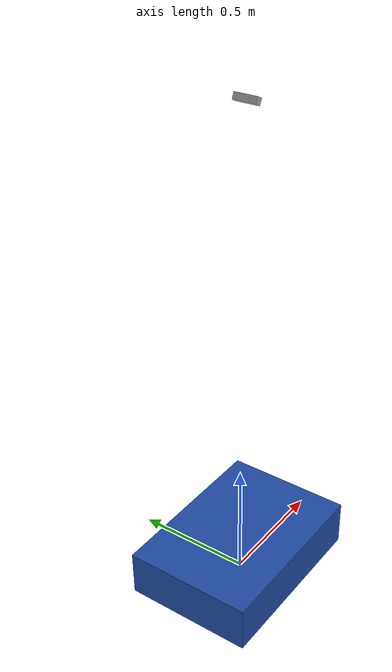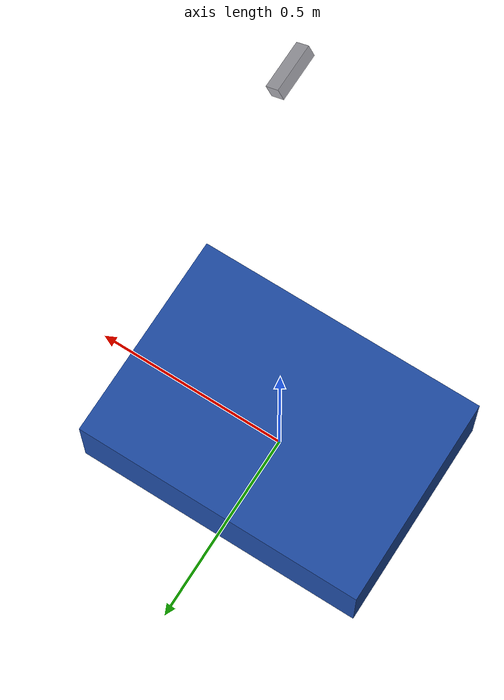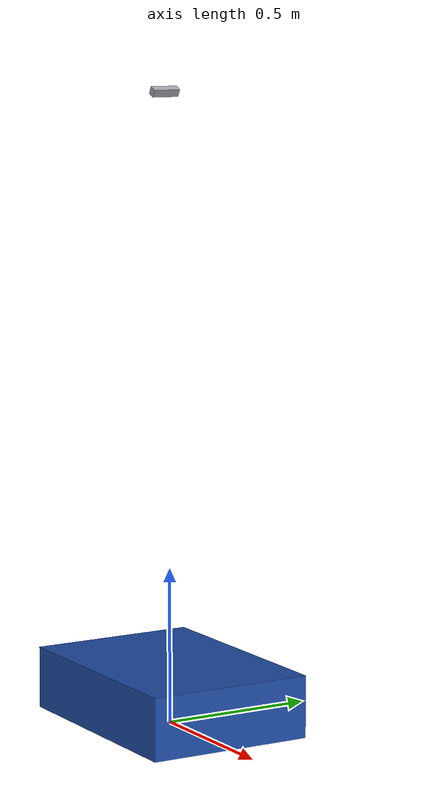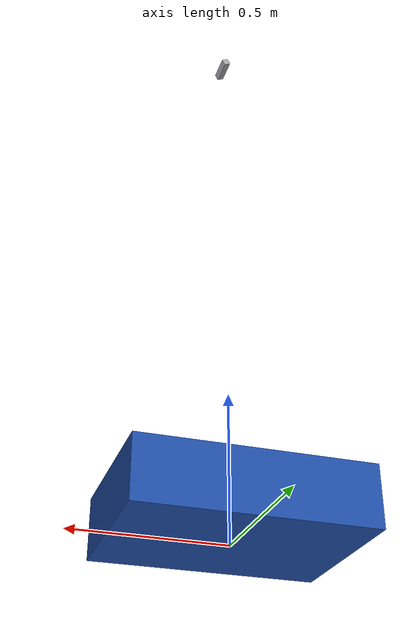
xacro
<?xml version="1.0"?>
<robot xmlns:xacro="http://www.ros.org/wiki/xacro" name="linearbot">
  <!--
    The footprint dimensions come from the documented full LinearBot envelope.
    Base height is provisional because a base-only height is not yet available.
  -->
  <xacro:property name="base_length" value="0.751" />
  <xacro:property name="base_width" value="0.542" />
  <xacro:property name="base_height" value="0.200" />
  <xacro:property name="base_mass" value="80.0" />

  <xacro:arg name="camera_x" default="0.0" />
  <xacro:arg name="camera_y" default="0.0" />
  <xacro:arg name="camera_z" default="2.0" />
  <xacro:arg name="camera_roll" default="0.0" />
  <xacro:arg name="camera_pitch" default="auto" />
  <xacro:arg name="camera_yaw" default="0.0" />
  <xacro:arg name="camera_hfov" default="87.0" />
  <xacro:arg name="camera_vfov" default="58.0" />
  <xacro:arg name="camera_image_width" default="1280" />
  <xacro:arg name="camera_image_height" default="720" />
  <xacro:arg name="camera_ground_distance" default="1.0" />
  <xacro:arg name="camera_nominal_depth_frames" default="true" />
  <xacro:property name="camera_pitch_request" value="$(arg camera_pitch)" />
  <xacro:property name="camera_ground_run"
                  value="${base_length / 2.0 + float('$(arg camera_ground_distance)') - float('$(arg camera_x)')}" />
  <xacro:property name="camera_half_vfov"
                  value="${float('$(arg camera_vfov)') * pi / 360.0}" />
  <xacro:property name="camera_mount_pitch"
                  value="${max(0.0, atan2(float('$(arg camera_z)'), camera_ground_run) - camera_half_vfov) if camera_pitch_request == 'auto' else float(camera_pitch_request)}" />

  <!-- Simplified D435i enclosure and nominal left-depth-imager reference. -->
  <xacro:property name="camera_width" value="0.090" />
  <xacro:property name="camera_height" value="0.025" />
  <xacro:property name="camera_depth" value="0.025" />
  <xacro:property name="camera_depth_reference_y" value="0.0175" />

  <!-- COM is currently undetermined; use the geometric center provisionally. -->
  <xacro:property name="com_x" value="0.0" />
  <xacro:property name="com_y" value="0.0" />
  <xacro:property name="com_z" value="${base_height / 2.0}" />

  <xacro:property name="ixx" value="${base_mass / 12.0 * (base_width * base_width + base_height * base_height)}" />
  <xacro:property name="iyy" value="${base_mass / 12.0 * (base_length * base_length + base_height * base_height)}" />
  <xacro:property name="izz" value="${base_mass / 12.0 * (base_length * base_length + base_width * base_width)}" />

  <link name="base_footprint" />

  <joint name="base_footprint_to_base_link" type="fixed">
    <parent link="base_footprint" />
    <child link="base_link" />
    <origin xyz="0 0 0" rpy="0 0 0" />
  </joint>

  <link name="base_link">
    <visual>
      <origin xyz="0 0 ${base_height / 2.0}" rpy="0 0 0" />
      <geometry>
        <box size="${base_length} ${base_width} ${base_height}" />
      </geometry>
      <material name="flow_base_blue">
        <color rgba="0.12 0.30 0.65 1.0" />
      </material>
    </visual>

    <collision>
      <origin xyz="0 0 ${base_height / 2.0}" rpy="0 0 0" />
      <geometry>
        <box size="${base_length} ${base_width} ${base_height}" />
      </geometry>
    </collision>

    <inertial>
      <origin xyz="${com_x} ${com_y} ${com_z}" rpy="0 0 0" />
      <mass value="${base_mass}" />
      <inertia
        ixx="${ixx}" ixy="0.0" ixz="0.0"
        iyy="${iyy}" iyz="0.0"
        izz="${izz}" />
    </inertial>
  </link>

  <joint name="base_link_to_camera_link" type="fixed">
    <parent link="base_link" />
    <child link="camera_link" />
    <origin xyz="$(arg camera_x) $(arg camera_y) $(arg camera_z)"
            rpy="$(arg camera_roll) ${camera_mount_pitch} $(arg camera_yaw)" />
  </joint>

  <link name="camera_link">
    <visual>
      <origin xyz="0 ${-camera_depth_reference_y} 0" rpy="0 0 0" />
      <geometry>
        <box size="${camera_depth} ${camera_width} ${camera_height}" />
      </geometry>
      <material name="camera_silver">
        <color rgba="0.65 0.65 0.68 1.0" />
      </material>
    </visual>
    <collision>
      <origin xyz="0 ${-camera_depth_reference_y} 0" rpy="0 0 0" />
      <geometry>
        <box size="${camera_depth} ${camera_width} ${camera_height}" />
      </geometry>
    </collision>
  </link>

  <!-- Disable these nominal frames when the RealSense driver publishes them. -->
  <xacro:if value="$(arg camera_nominal_depth_frames)">
    <!-- Simulation IMU axes follow camera_link. Hardware uses driver extrinsics. -->
    <link name="camera_imu_frame" />
    <joint name="camera_link_to_imu_frame" type="fixed">
      <parent link="camera_link" />
      <child link="camera_imu_frame" />
      <origin xyz="0 0 0" rpy="0 0 0" />
    </joint>
    <link name="camera_depth_frame" />
    <joint name="camera_link_to_depth_frame" type="fixed">
      <parent link="camera_link" />
      <child link="camera_depth_frame" />
      <origin xyz="0 0 0" rpy="0 0 0" />
    </joint>

    <!-- Optical axes: Z forward, X right, Y down (ROS REP-103). -->
    <link name="camera_depth_optical_frame" />
    <joint name="camera_depth_to_optical_frame" type="fixed">
      <parent link="camera_depth_frame" />
      <child link="camera_depth_optical_frame" />
      <origin xyz="0 0 0" rpy="${-pi / 2.0} 0 ${-pi / 2.0}" />
    </joint>
  </xacro:if>

  <!-- Virtual level scan plane for projecting the tilted camera point cloud.
       Its 0.22 m height keeps the 2D scan inside the collision monitor's band. -->
  <link name="camera_scan_frame" />
  <joint name="base_link_to_camera_scan_frame" type="fixed">
    <parent link="base_link" />
    <child link="camera_scan_frame" />
    <origin xyz="$(arg camera_x) $(arg camera_y) 0.22"
            rpy="0 0 $(arg camera_yaw)" />
  </joint>

  <link name="laser_link" />

  <joint name="base_link_to_laser_link" type="fixed">
    <parent link="base_link" />
    <child link="laser_link" />
    <origin xyz="0 0 0.22" rpy="0 0 0" />
  </joint>
</robot>
